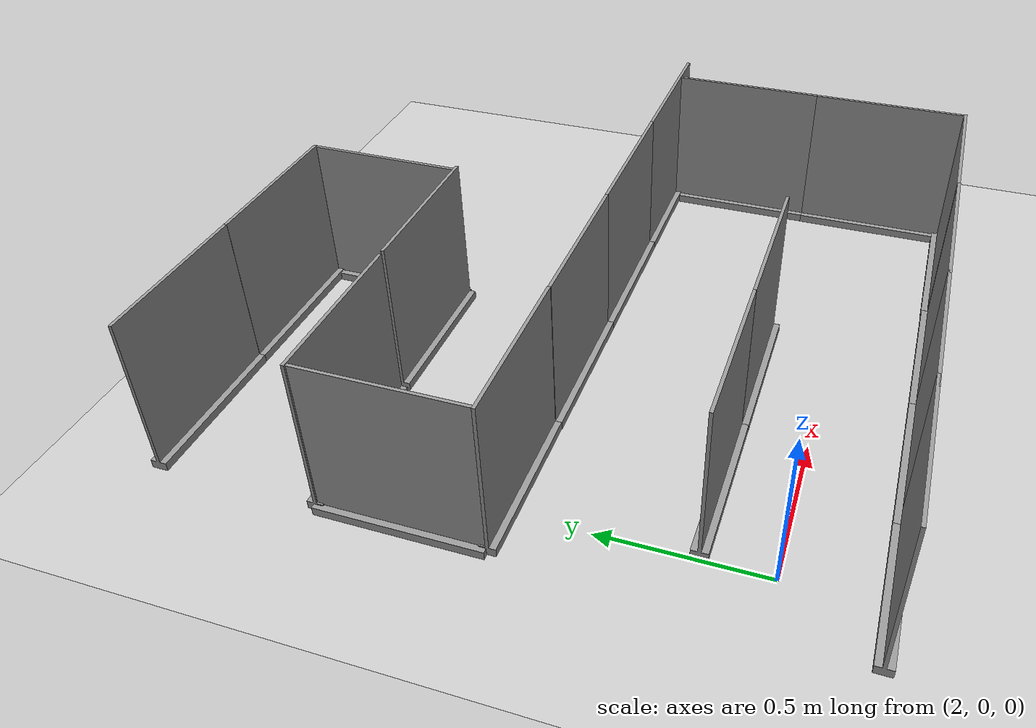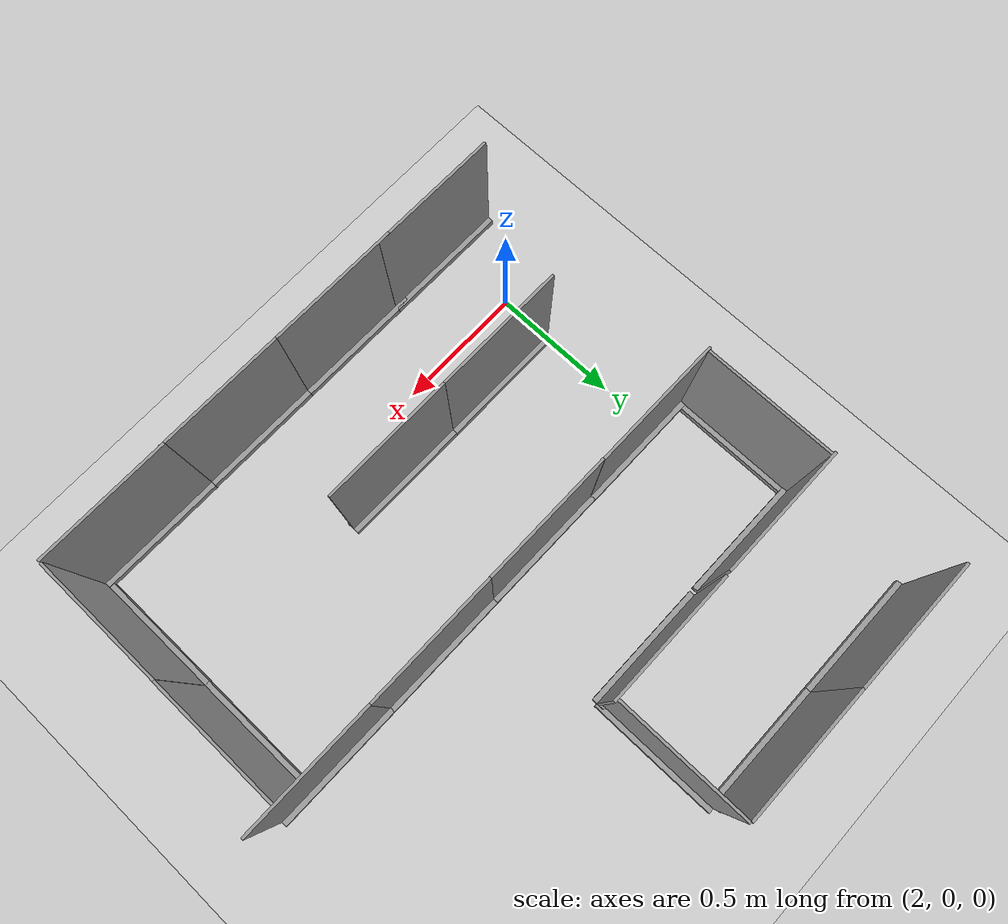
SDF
<sdf version="1.7">
 <world name="default">
  <model name="ground_plane">
   <static>1</static>
   <link name="link">
    <collision name="collision">
     <geometry><plane><normal>0 0 1</normal><size>100 100</size></plane></geometry>
     <surface>
      <contact><collide_bitmask>65535</collide_bitmask></contact>
      <friction><ode><mu>100</mu><mu2>50</mu2></ode></friction>
     </surface>
    </collision>
    <visual name="visual">
     <cast_shadows>0</cast_shadows>
     <geometry><plane><normal>0 0 1</normal><size>100 100</size></plane></geometry>
     <material>
      <script><uri>file://media/materials/scripts/gazebo.material</uri><name>Gazebo/Grey</name></script>
     </material>
    </visual>
   </link>
  </model>
  <model name="Labyrinth_clone_0_clone_2">
   <link name="link_0">
    <inertial>
     <mass>1</mass>
     <inertia>
      <ixx>0.166667</ixx>
      <ixy>0</ixy>
      <ixz>0</ixz>
      <iyy>0.166667</iyy>
      <iyz>0</iyz>
      <izz>0.166667</izz>
     </inertia>
    </inertial>
    <visual name="visual">
     <geometry>
      <mesh><uri>/home/michael/turtlebot_ws/src/worlds/Labyrinth.dae</uri><scale>1 1 1</scale></mesh>
     </geometry>
     <material>
      <lighting>1</lighting>
      <script><uri>file://media/materials/scripts/gazebo.material</uri><name>Gazebo/Grey</name></script>
      <shader type="pixel"/>
     </material>
    </visual>
    <collision name="collision">
     <geometry>
      <mesh><uri>/home/michael/turtlebot_ws/src/worlds/Labyrinth.dae</uri><scale>1 1 1</scale></mesh>
     </geometry>
     <surface>
      <friction>
       <ode><mu>1</mu><mu2>1</mu2><fdir1>0 0 0</fdir1><slip1>0</slip1><slip2>0</slip2></ode>
       <torsional>
        <coefficient>1</coefficient>
        <patch_radius>0</patch_radius>
        <surface_radius>0</surface_radius>
        <use_patch_radius>1</use_patch_radius>
        <ode><slip>0</slip></ode>
       </torsional>
      </friction>
      <bounce><restitution_coefficient>0</restitution_coefficient><threshold>1e+06</threshold></bounce>
      <contact>
       <collide_without_contact>0</collide_without_contact>
       <collide_without_contact_bitmask>1</collide_without_contact_bitmask>
       <collide_bitmask>1</collide_bitmask>
       <ode>
        <soft_cfm>0</soft_cfm>
        <soft_erp>0.2</soft_erp>
        <kp>1e+13</kp>
        <kd>1</kd>
        <max_vel>0.01</max_vel>
        <min_depth>0</min_depth>
       </ode>
       <bullet>
        <split_impulse>1</split_impulse>
        <split_impulse_penetration_threshold>-0.01</split_impulse_penetration_threshold>
        <soft_cfm>0</soft_cfm>
        <soft_erp>0.2</soft_erp>
        <kp>1e+13</kp>
        <kd>1</kd>
       </bullet>
      </contact>
     </surface>
    </collision>
   </link>
   <static>1</static>
   <pose>1.50586 -0.547796 -0.348859 0 -0 1.56533</pose>
  </model>
  <model name="Labyrinth_clone_0_clone_3">
   <link name="link_0">
    <inertial>
     <mass>1</mass>
     <inertia>
      <ixx>0.166667</ixx>
      <ixy>0</ixy>
      <ixz>0</ixz>
      <iyy>0.166667</iyy>
      <iyz>0</iyz>
      <izz>0.166667</izz>
     </inertia>
    </inertial>
    <visual name="visual">
     <geometry>
      <mesh><uri>/home/michael/turtlebot_ws/src/worlds/Labyrinth.dae</uri><scale>1 1 1</scale></mesh>
     </geometry>
     <material>
      <lighting>1</lighting>
      <script><uri>file://media/materials/scripts/gazebo.material</uri><name>Gazebo/Grey</name></script>
      <shader type="pixel"/>
     </material>
    </visual>
    <collision name="collision">
     <geometry>
      <mesh><uri>/home/michael/turtlebot_ws/src/worlds/Labyrinth.dae</uri><scale>1 1 1</scale></mesh>
     </geometry>
     <surface>
      <friction>
       <ode><mu>1</mu><mu2>1</mu2><fdir1>0 0 0</fdir1><slip1>0</slip1><slip2>0</slip2></ode>
       <torsional>
        <coefficient>1</coefficient>
        <patch_radius>0</patch_radius>
        <surface_radius>0</surface_radius>
        <use_patch_radius>1</use_patch_radius>
        <ode><slip>0</slip></ode>
       </torsional>
      </friction>
      <bounce><restitution_coefficient>0</restitution_coefficient><threshold>1e+06</threshold></bounce>
      <contact>
       <collide_without_contact>0</collide_without_contact>
       <collide_without_contact_bitmask>1</collide_without_contact_bitmask>
       <collide_bitmask>1</collide_bitmask>
       <ode>
        <soft_cfm>0</soft_cfm>
        <soft_erp>0.2</soft_erp>
        <kp>1e+13</kp>
        <kd>1</kd>
        <max_vel>0.01</max_vel>
        <min_depth>0</min_depth>
       </ode>
       <bullet>
        <split_impulse>1</split_impulse>
        <split_impulse_penetration_threshold>-0.01</split_impulse_penetration_threshold>
        <soft_cfm>0</soft_cfm>
        <soft_erp>0.2</soft_erp>
        <kp>1e+13</kp>
        <kd>1</kd>
       </bullet>
      </contact>
     </surface>
    </collision>
   </link>
   <static>1</static>
   <pose>1.9586 -0.550609 -0.348859 0 -0 1.56533</pose>
  </model>
  <model name="Labyrinth_clone_0_clone_4">
   <link name="link_0">
    <inertial>
     <mass>1</mass>
     <inertia>
      <ixx>0.166667</ixx>
      <ixy>0</ixy>
      <ixz>0</ixz>
      <iyy>0.166667</iyy>
      <iyz>0</iyz>
      <izz>0.166667</izz>
     </inertia>
    </inertial>
    <visual name="visual">
     <geometry>
      <mesh><uri>/home/michael/turtlebot_ws/src/worlds/Labyrinth.dae</uri><scale>1 1 1</scale></mesh>
     </geometry>
     <material>
      <lighting>1</lighting>
      <script><uri>file://media/materials/scripts/gazebo.material</uri><name>Gazebo/Grey</name></script>
      <shader type="pixel"/>
     </material>
    </visual>
    <collision name="collision">
     <geometry>
      <mesh><uri>/home/michael/turtlebot_ws/src/worlds/Labyrinth.dae</uri><scale>1 1 1</scale></mesh>
     </geometry>
     <surface>
      <friction>
       <ode><mu>1</mu><mu2>1</mu2><fdir1>0 0 0</fdir1><slip1>0</slip1><slip2>0</slip2></ode>
       <torsional>
        <coefficient>1</coefficient>
        <patch_radius>0</patch_radius>
        <surface_radius>0</surface_radius>
        <use_patch_radius>1</use_patch_radius>
        <ode><slip>0</slip></ode>
       </torsional>
      </friction>
      <bounce><restitution_coefficient>0</restitution_coefficient><threshold>1e+06</threshold></bounce>
      <contact>
       <collide_without_contact>0</collide_without_contact>
       <collide_without_contact_bitmask>1</collide_without_contact_bitmask>
       <collide_bitmask>1</collide_bitmask>
       <ode>
        <soft_cfm>0</soft_cfm>
        <soft_erp>0.2</soft_erp>
        <kp>1e+13</kp>
        <kd>1</kd>
        <max_vel>0.01</max_vel>
        <min_depth>0</min_depth>
       </ode>
       <bullet>
        <split_impulse>1</split_impulse>
        <split_impulse_penetration_threshold>-0.01</split_impulse_penetration_threshold>
        <soft_cfm>0</soft_cfm>
        <soft_erp>0.2</soft_erp>
        <kp>1e+13</kp>
        <kd>1</kd>
       </bullet>
      </contact>
     </surface>
    </collision>
   </link>
   <static>1</static>
   <pose>2.44971 -0.553316 -0.348859 0 -0 1.56533</pose>
  </model>
  <model name="Labyrinth_clone_0_clone_5">
   <link name="link_0">
    <inertial>
     <mass>1</mass>
     <inertia>
      <ixx>0.166667</ixx>
      <ixy>0</ixy>
      <ixz>0</ixz>
      <iyy>0.166667</iyy>
      <iyz>0</iyz>
      <izz>0.166667</izz>
     </inertia>
    </inertial>
    <visual name="visual">
     <geometry>
      <mesh><uri>/home/michael/turtlebot_ws/src/worlds/Labyrinth.dae</uri><scale>1 1 1</scale></mesh>
     </geometry>
     <material>
      <lighting>1</lighting>
      <script><uri>file://media/materials/scripts/gazebo.material</uri><name>Gazebo/Grey</name></script>
      <shader type="pixel"/>
     </material>
    </visual>
    <collision name="collision">
     <geometry>
      <mesh><uri>/home/michael/turtlebot_ws/src/worlds/Labyrinth.dae</uri><scale>1 1 1</scale></mesh>
     </geometry>
     <surface>
      <friction>
       <ode><mu>1</mu><mu2>1</mu2><fdir1>0 0 0</fdir1><slip1>0</slip1><slip2>0</slip2></ode>
       <torsional>
        <coefficient>1</coefficient>
        <patch_radius>0</patch_radius>
        <surface_radius>0</surface_radius>
        <use_patch_radius>1</use_patch_radius>
        <ode><slip>0</slip></ode>
       </torsional>
      </friction>
      <bounce><restitution_coefficient>0</restitution_coefficient><threshold>1e+06</threshold></bounce>
      <contact>
       <collide_without_contact>0</collide_without_contact>
       <collide_without_contact_bitmask>1</collide_without_contact_bitmask>
       <collide_bitmask>1</collide_bitmask>
       <ode>
        <soft_cfm>0</soft_cfm>
        <soft_erp>0.2</soft_erp>
        <kp>1e+13</kp>
        <kd>1</kd>
        <max_vel>0.01</max_vel>
        <min_depth>0</min_depth>
       </ode>
       <bullet>
        <split_impulse>1</split_impulse>
        <split_impulse_penetration_threshold>-0.01</split_impulse_penetration_threshold>
        <soft_cfm>0</soft_cfm>
        <soft_erp>0.2</soft_erp>
        <kp>1e+13</kp>
        <kd>1</kd>
       </bullet>
      </contact>
     </surface>
    </collision>
   </link>
   <static>1</static>
   <pose>2.93401 -0.554741 -0.348859 0 -0 1.56533</pose>
  </model>
  <model name="Labyrinth_clone_clone">
   <link name="link_0">
    <inertial>
     <mass>1</mass>
     <inertia>
      <ixx>0.166667</ixx>
      <ixy>0</ixy>
      <ixz>0</ixz>
      <iyy>0.166667</iyy>
      <iyz>0</iyz>
      <izz>0.166667</izz>
     </inertia>
    </inertial>
    <visual name="visual">
     <geometry>
      <mesh><uri>/home/michael/turtlebot_ws/src/worlds/Labyrinth.dae</uri><scale>1 1 1</scale></mesh>
     </geometry>
     <material>
      <lighting>1</lighting>
      <script><uri>file://media/materials/scripts/gazebo.material</uri><name>Gazebo/Grey</name></script>
      <shader type="pixel"/>
     </material>
    </visual>
    <collision name="collision">
     <geometry>
      <mesh><uri>/home/michael/turtlebot_ws/src/worlds/Labyrinth.dae</uri><scale>1 1 1</scale></mesh>
     </geometry>
     <surface>
      <friction>
       <ode><mu>1</mu><mu2>1</mu2><fdir1>0 0 0</fdir1><slip1>0</slip1><slip2>0</slip2></ode>
       <torsional>
        <coefficient>1</coefficient>
        <patch_radius>0</patch_radius>
        <surface_radius>0</surface_radius>
        <use_patch_radius>1</use_patch_radius>
        <ode><slip>0</slip></ode>
       </torsional>
      </friction>
      <bounce><restitution_coefficient>0</restitution_coefficient><threshold>1e+06</threshold></bounce>
      <contact>
       <collide_without_contact>0</collide_without_contact>
       <collide_without_contact_bitmask>1</collide_without_contact_bitmask>
       <collide_bitmask>1</collide_bitmask>
       <ode>
        <soft_cfm>0</soft_cfm>
        <soft_erp>0.2</soft_erp>
        <kp>1e+13</kp>
        <kd>1</kd>
        <max_vel>0.01</max_vel>
        <min_depth>0</min_depth>
       </ode>
       <bullet>
        <split_impulse>1</split_impulse>
        <split_impulse_penetration_threshold>-0.01</split_impulse_penetration_threshold>
        <soft_cfm>0</soft_cfm>
        <soft_erp>0.2</soft_erp>
        <kp>1e+13</kp>
        <kd>1</kd>
       </bullet>
      </contact>
     </surface>
    </collision>
   </link>
   <static>1</static>
   <pose>3.46218 0.510602 -0.352876 0 -0 0</pose>
  </model>
  <model name="Labyrinth_clone_clone_0">
   <link name="link_0">
    <inertial>
     <mass>1</mass>
     <inertia>
      <ixx>0.166667</ixx>
      <ixy>0</ixy>
      <ixz>0</ixz>
      <iyy>0.166667</iyy>
      <iyz>0</iyz>
      <izz>0.166667</izz>
     </inertia>
    </inertial>
    <visual name="visual">
     <geometry>
      <mesh><uri>/home/michael/turtlebot_ws/src/worlds/Labyrinth.dae</uri><scale>1 1 1</scale></mesh>
     </geometry>
     <material>
      <lighting>1</lighting>
      <script><uri>file://media/materials/scripts/gazebo.material</uri><name>Gazebo/Grey</name></script>
      <shader type="pixel"/>
     </material>
    </visual>
    <collision name="collision">
     <geometry>
      <mesh><uri>/home/michael/turtlebot_ws/src/worlds/Labyrinth.dae</uri><scale>1 1 1</scale></mesh>
     </geometry>
     <surface>
      <friction>
       <ode><mu>1</mu><mu2>1</mu2><fdir1>0 0 0</fdir1><slip1>0</slip1><slip2>0</slip2></ode>
       <torsional>
        <coefficient>1</coefficient>
        <patch_radius>0</patch_radius>
        <surface_radius>0</surface_radius>
        <use_patch_radius>1</use_patch_radius>
        <ode><slip>0</slip></ode>
       </torsional>
      </friction>
      <bounce><restitution_coefficient>0</restitution_coefficient><threshold>1e+06</threshold></bounce>
      <contact>
       <collide_without_contact>0</collide_without_contact>
       <collide_without_contact_bitmask>1</collide_without_contact_bitmask>
       <collide_bitmask>1</collide_bitmask>
       <ode>
        <soft_cfm>0</soft_cfm>
        <soft_erp>0.2</soft_erp>
        <kp>1e+13</kp>
        <kd>1</kd>
        <max_vel>0.01</max_vel>
        <min_depth>0</min_depth>
       </ode>
       <bullet>
        <split_impulse>1</split_impulse>
        <split_impulse_penetration_threshold>-0.01</split_impulse_penetration_threshold>
        <soft_cfm>0</soft_cfm>
        <soft_erp>0.2</soft_erp>
        <kp>1e+13</kp>
        <kd>1</kd>
       </bullet>
      </contact>
     </surface>
    </collision>
   </link>
   <static>1</static>
   <pose>3.46315 1.01229 -0.352876 0 -0 0</pose>
  </model>
  <model name="Labyrinth_clone_0_clone_5_clone">
   <link name="link_0">
    <inertial>
     <mass>1</mass>
     <inertia>
      <ixx>0.166667</ixx>
      <ixy>0</ixy>
      <ixz>0</ixz>
      <iyy>0.166667</iyy>
      <iyz>0</iyz>
      <izz>0.166667</izz>
     </inertia>
    </inertial>
    <visual name="visual">
     <geometry>
      <mesh><uri>/home/michael/turtlebot_ws/src/worlds/Labyrinth.dae</uri><scale>1 1 1</scale></mesh>
     </geometry>
     <material>
      <lighting>1</lighting>
      <script><uri>file://media/materials/scripts/gazebo.material</uri><name>Gazebo/Grey</name></script>
      <shader type="pixel"/>
     </material>
    </visual>
    <collision name="collision">
     <geometry>
      <mesh><uri>/home/michael/turtlebot_ws/src/worlds/Labyrinth.dae</uri><scale>1 1 1</scale></mesh>
     </geometry>
     <surface>
      <friction>
       <ode><mu>1</mu><mu2>1</mu2><fdir1>0 0 0</fdir1><slip1>0</slip1><slip2>0</slip2></ode>
       <torsional>
        <coefficient>1</coefficient>
        <patch_radius>0</patch_radius>
        <surface_radius>0</surface_radius>
        <use_patch_radius>1</use_patch_radius>
        <ode><slip>0</slip></ode>
       </torsional>
      </friction>
      <bounce><restitution_coefficient>0</restitution_coefficient><threshold>1e+06</threshold></bounce>
      <contact>
       <collide_without_contact>0</collide_without_contact>
       <collide_without_contact_bitmask>1</collide_without_contact_bitmask>
       <collide_bitmask>1</collide_bitmask>
       <ode>
        <soft_cfm>0</soft_cfm>
        <soft_erp>0.2</soft_erp>
        <kp>1e+13</kp>
        <kd>1</kd>
        <max_vel>0.01</max_vel>
        <min_depth>0</min_depth>
       </ode>
       <bullet>
        <split_impulse>1</split_impulse>
        <split_impulse_penetration_threshold>-0.01</split_impulse_penetration_threshold>
        <soft_cfm>0</soft_cfm>
        <soft_erp>0.2</soft_erp>
        <kp>1e+13</kp>
        <kd>1</kd>
       </bullet>
      </contact>
     </surface>
    </collision>
   </link>
   <static>1</static>
   <pose>2.20642 -0.0627 -0.348859 0 -0 1.56533</pose>
  </model>
  <model name="Labyrinth_clone_0_clone_5_clone_0">
   <link name="link_0">
    <inertial>
     <mass>1</mass>
     <inertia>
      <ixx>0.166667</ixx>
      <ixy>0</ixy>
      <ixz>0</ixz>
      <iyy>0.166667</iyy>
      <iyz>0</iyz>
      <izz>0.166667</izz>
     </inertia>
    </inertial>
    <visual name="visual">
     <geometry>
      <mesh><uri>/home/michael/turtlebot_ws/src/worlds/Labyrinth.dae</uri><scale>1 1 1</scale></mesh>
     </geometry>
     <material>
      <lighting>1</lighting>
      <script><uri>file://media/materials/scripts/gazebo.material</uri><name>Gazebo/Grey</name></script>
      <shader type="pixel"/>
     </material>
    </visual>
    <collision name="collision">
     <geometry>
      <mesh><uri>/home/michael/turtlebot_ws/src/worlds/Labyrinth.dae</uri><scale>1 1 1</scale></mesh>
     </geometry>
     <surface>
      <friction>
       <ode><mu>1</mu><mu2>1</mu2><fdir1>0 0 0</fdir1><slip1>0</slip1><slip2>0</slip2></ode>
       <torsional>
        <coefficient>1</coefficient>
        <patch_radius>0</patch_radius>
        <surface_radius>0</surface_radius>
        <use_patch_radius>1</use_patch_radius>
        <ode><slip>0</slip></ode>
       </torsional>
      </friction>
      <bounce><restitution_coefficient>0</restitution_coefficient><threshold>1e+06</threshold></bounce>
      <contact>
       <collide_without_contact>0</collide_without_contact>
       <collide_without_contact_bitmask>1</collide_without_contact_bitmask>
       <collide_bitmask>1</collide_bitmask>
       <ode>
        <soft_cfm>0</soft_cfm>
        <soft_erp>0.2</soft_erp>
        <kp>1e+13</kp>
        <kd>1</kd>
        <max_vel>0.01</max_vel>
        <min_depth>0</min_depth>
       </ode>
       <bullet>
        <split_impulse>1</split_impulse>
        <split_impulse_penetration_threshold>-0.01</split_impulse_penetration_threshold>
        <soft_cfm>0</soft_cfm>
        <soft_erp>0.2</soft_erp>
        <kp>1e+13</kp>
        <kd>1</kd>
       </bullet>
      </contact>
     </surface>
    </collision>
   </link>
   <static>1</static>
   <pose>1.70557 -0.059722 -0.348859 0 -0 1.56533</pose>
  </model>
  <model name="Labyrinth_clone_0_clone_5_clone_6">
   <link name="link_0">
    <inertial>
     <mass>1</mass>
     <inertia>
      <ixx>0.166667</ixx>
      <ixy>0</ixy>
      <ixz>0</ixz>
      <iyy>0.166667</iyy>
      <iyz>0</iyz>
      <izz>0.166667</izz>
     </inertia>
    </inertial>
    <visual name="visual">
     <geometry>
      <mesh><uri>/home/michael/turtlebot_ws/src/worlds/Labyrinth.dae</uri><scale>1 1 1</scale></mesh>
     </geometry>
     <material>
      <lighting>1</lighting>
      <script><uri>file://media/materials/scripts/gazebo.material</uri><name>Gazebo/Grey</name></script>
      <shader type="pixel"/>
     </material>
    </visual>
    <collision name="collision">
     <geometry>
      <mesh><uri>/home/michael/turtlebot_ws/src/worlds/Labyrinth.dae</uri><scale>1 1 1</scale></mesh>
     </geometry>
     <surface>
      <friction>
       <ode><mu>1</mu><mu2>1</mu2><fdir1>0 0 0</fdir1><slip1>0</slip1><slip2>0</slip2></ode>
       <torsional>
        <coefficient>1</coefficient>
        <patch_radius>0</patch_radius>
        <surface_radius>0</surface_radius>
        <use_patch_radius>1</use_patch_radius>
        <ode><slip>0</slip></ode>
       </torsional>
      </friction>
      <bounce><restitution_coefficient>0</restitution_coefficient><threshold>1e+06</threshold></bounce>
      <contact>
       <collide_without_contact>0</collide_without_contact>
       <collide_without_contact_bitmask>1</collide_without_contact_bitmask>
       <collide_bitmask>1</collide_bitmask>
       <ode>
        <soft_cfm>0</soft_cfm>
        <soft_erp>0.2</soft_erp>
        <kp>1e+13</kp>
        <kd>1</kd>
        <max_vel>0.01</max_vel>
        <min_depth>0</min_depth>
       </ode>
       <bullet>
        <split_impulse>1</split_impulse>
        <split_impulse_penetration_threshold>-0.01</split_impulse_penetration_threshold>
        <soft_cfm>0</soft_cfm>
        <soft_erp>0.2</soft_erp>
        <kp>1e+13</kp>
        <kd>1</kd>
       </bullet>
      </contact>
     </surface>
    </collision>
   </link>
   <static>1</static>
   <pose>3.05533 0.457917 -0.348859 0 -0 1.56533</pose>
  </model>
  <model name="Labyrinth_clone_0_clone_5_clone_7">
   <link name="link_0">
    <inertial>
     <mass>1</mass>
     <inertia>
      <ixx>0.166667</ixx>
      <ixy>0</ixy>
      <ixz>0</ixz>
      <iyy>0.166667</iyy>
      <iyz>0</iyz>
      <izz>0.166667</izz>
     </inertia>
    </inertial>
    <visual name="visual">
     <geometry>
      <mesh><uri>/home/michael/turtlebot_ws/src/worlds/Labyrinth.dae</uri><scale>1 1 1</scale></mesh>
     </geometry>
     <material>
      <lighting>1</lighting>
      <script><uri>file://media/materials/scripts/gazebo.material</uri><name>Gazebo/Grey</name></script>
      <shader type="pixel"/>
     </material>
    </visual>
    <collision name="collision">
     <geometry>
      <mesh><uri>/home/michael/turtlebot_ws/src/worlds/Labyrinth.dae</uri><scale>1 1 1</scale></mesh>
     </geometry>
     <surface>
      <friction>
       <ode><mu>1</mu><mu2>1</mu2><fdir1>0 0 0</fdir1><slip1>0</slip1><slip2>0</slip2></ode>
       <torsional>
        <coefficient>1</coefficient>
        <patch_radius>0</patch_radius>
        <surface_radius>0</surface_radius>
        <use_patch_radius>1</use_patch_radius>
        <ode><slip>0</slip></ode>
       </torsional>
      </friction>
      <bounce><restitution_coefficient>0</restitution_coefficient><threshold>1e+06</threshold></bounce>
      <contact>
       <collide_without_contact>0</collide_without_contact>
       <collide_without_contact_bitmask>1</collide_without_contact_bitmask>
       <collide_bitmask>1</collide_bitmask>
       <ode>
        <soft_cfm>0</soft_cfm>
        <soft_erp>0.2</soft_erp>
        <kp>1e+13</kp>
        <kd>1</kd>
        <max_vel>0.01</max_vel>
        <min_depth>0</min_depth>
       </ode>
       <bullet>
        <split_impulse>1</split_impulse>
        <split_impulse_penetration_threshold>-0.01</split_impulse_penetration_threshold>
        <soft_cfm>0</soft_cfm>
        <soft_erp>0.2</soft_erp>
        <kp>1e+13</kp>
        <kd>1</kd>
       </bullet>
      </contact>
     </surface>
    </collision>
   </link>
   <static>1</static>
   <pose>2.55404 0.460753 -0.348859 0 -0 1.56533</pose>
  </model>
  <model name="Labyrinth_clone_0_clone_5_clone_8">
   <link name="link_0">
    <inertial>
     <mass>1</mass>
     <inertia>
      <ixx>0.166667</ixx>
      <ixy>0</ixy>
      <ixz>0</ixz>
      <iyy>0.166667</iyy>
      <iyz>0</iyz>
      <izz>0.166667</izz>
     </inertia>
    </inertial>
    <visual name="visual">
     <geometry>
      <mesh><uri>/home/michael/turtlebot_ws/src/worlds/Labyrinth.dae</uri><scale>1 1 1</scale></mesh>
     </geometry>
     <material>
      <lighting>1</lighting>
      <script><uri>file://media/materials/scripts/gazebo.material</uri><name>Gazebo/Grey</name></script>
      <shader type="pixel"/>
     </material>
    </visual>
    <collision name="collision">
     <geometry>
      <mesh><uri>/home/michael/turtlebot_ws/src/worlds/Labyrinth.dae</uri><scale>1 1 1</scale></mesh>
     </geometry>
     <surface>
      <friction>
       <ode><mu>1</mu><mu2>1</mu2><fdir1>0 0 0</fdir1><slip1>0</slip1><slip2>0</slip2></ode>
       <torsional>
        <coefficient>1</coefficient>
        <patch_radius>0</patch_radius>
        <surface_radius>0</surface_radius>
        <use_patch_radius>1</use_patch_radius>
        <ode><slip>0</slip></ode>
       </torsional>
      </friction>
      <bounce><restitution_coefficient>0</restitution_coefficient><threshold>1e+06</threshold></bounce>
      <contact>
       <collide_without_contact>0</collide_without_contact>
       <collide_without_contact_bitmask>1</collide_without_contact_bitmask>
       <collide_bitmask>1</collide_bitmask>
       <ode>
        <soft_cfm>0</soft_cfm>
        <soft_erp>0.2</soft_erp>
        <kp>1e+13</kp>
        <kd>1</kd>
        <max_vel>0.01</max_vel>
        <min_depth>0</min_depth>
       </ode>
       <bullet>
        <split_impulse>1</split_impulse>
        <split_impulse_penetration_threshold>-0.01</split_impulse_penetration_threshold>
        <soft_cfm>0</soft_cfm>
        <soft_erp>0.2</soft_erp>
        <kp>1e+13</kp>
        <kd>1</kd>
       </bullet>
      </contact>
     </surface>
    </collision>
   </link>
   <static>1</static>
   <pose>2.05102 0.463323 -0.348859 0 -0 1.56533</pose>
  </model>
  <model name="Labyrinth_clone_0_clone_5_clone_9">
   <link name="link_0">
    <inertial>
     <mass>1</mass>
     <inertia>
      <ixx>0.166667</ixx>
      <ixy>0</ixy>
      <ixz>0</ixz>
      <iyy>0.166667</iyy>
      <iyz>0</iyz>
      <izz>0.166667</izz>
     </inertia>
    </inertial>
    <visual name="visual">
     <geometry>
      <mesh><uri>/home/michael/turtlebot_ws/src/worlds/Labyrinth.dae</uri><scale>1 1 1</scale></mesh>
     </geometry>
     <material>
      <lighting>1</lighting>
      <script><uri>file://media/materials/scripts/gazebo.material</uri><name>Gazebo/Grey</name></script>
      <shader type="pixel"/>
     </material>
    </visual>
    <collision name="collision">
     <geometry>
      <mesh><uri>/home/michael/turtlebot_ws/src/worlds/Labyrinth.dae</uri><scale>1 1 1</scale></mesh>
     </geometry>
     <surface>
      <friction>
       <ode><mu>1</mu><mu2>1</mu2><fdir1>0 0 0</fdir1><slip1>0</slip1><slip2>0</slip2></ode>
       <torsional>
        <coefficient>1</coefficient>
        <patch_radius>0</patch_radius>
        <surface_radius>0</surface_radius>
        <use_patch_radius>1</use_patch_radius>
        <ode><slip>0</slip></ode>
       </torsional>
      </friction>
      <bounce><restitution_coefficient>0</restitution_coefficient><threshold>1e+06</threshold></bounce>
      <contact>
       <collide_without_contact>0</collide_without_contact>
       <collide_without_contact_bitmask>1</collide_without_contact_bitmask>
       <collide_bitmask>1</collide_bitmask>
       <ode>
        <soft_cfm>0</soft_cfm>
        <soft_erp>0.2</soft_erp>
        <kp>1e+13</kp>
        <kd>1</kd>
        <max_vel>0.01</max_vel>
        <min_depth>0</min_depth>
       </ode>
       <bullet>
        <split_impulse>1</split_impulse>
        <split_impulse_penetration_threshold>-0.01</split_impulse_penetration_threshold>
        <soft_cfm>0</soft_cfm>
        <soft_erp>0.2</soft_erp>
        <kp>1e+13</kp>
        <kd>1</kd>
       </bullet>
      </contact>
     </surface>
    </collision>
   </link>
   <static>1</static>
   <pose>1.55152 0.467419 -0.348859 0 -0 1.56533</pose>
  </model>
  <model name="Labyrinth_clone_clone_0_clone">
   <link name="link_0">
    <inertial>
     <mass>1</mass>
     <inertia>
      <ixx>0.166667</ixx>
      <ixy>0</ixy>
      <ixz>0</ixz>
      <iyy>0.166667</iyy>
      <iyz>0</iyz>
      <izz>0.166667</izz>
     </inertia>
    </inertial>
    <visual name="visual">
     <geometry>
      <mesh><uri>/home/michael/turtlebot_ws/src/worlds/Labyrinth.dae</uri><scale>1 1 1</scale></mesh>
     </geometry>
     <material>
      <lighting>1</lighting>
      <script><uri>file://media/materials/scripts/gazebo.material</uri><name>Gazebo/Grey</name></script>
      <shader type="pixel"/>
     </material>
    </visual>
    <collision name="collision">
     <geometry>
      <mesh><uri>/home/michael/turtlebot_ws/src/worlds/Labyrinth.dae</uri><scale>1 1 1</scale></mesh>
     </geometry>
     <surface>
      <friction>
       <ode><mu>1</mu><mu2>1</mu2><fdir1>0 0 0</fdir1><slip1>0</slip1><slip2>0</slip2></ode>
       <torsional>
        <coefficient>1</coefficient>
        <patch_radius>0</patch_radius>
        <surface_radius>0</surface_radius>
        <use_patch_radius>1</use_patch_radius>
        <ode><slip>0</slip></ode>
       </torsional>
      </friction>
      <bounce><restitution_coefficient>0</restitution_coefficient><threshold>1e+06</threshold></bounce>
      <contact>
       <collide_without_contact>0</collide_without_contact>
       <collide_without_contact_bitmask>1</collide_without_contact_bitmask>
       <collide_bitmask>1</collide_bitmask>
       <ode>
        <soft_cfm>0</soft_cfm>
        <soft_erp>0.2</soft_erp>
        <kp>1e+13</kp>
        <kd>1</kd>
        <max_vel>0.01</max_vel>
        <min_depth>0</min_depth>
       </ode>
       <bullet>
        <split_impulse>1</split_impulse>
        <split_impulse_penetration_threshold>-0.01</split_impulse_penetration_threshold>
        <soft_cfm>0</soft_cfm>
        <soft_erp>0.2</soft_erp>
        <kp>1e+13</kp>
        <kd>1</kd>
       </bullet>
      </contact>
     </surface>
    </collision>
   </link>
   <static>1</static>
   <pose>2.58471 2.02195 -0.352876 0 -0 0</pose>
  </model>
  <model name="Labyrinth_clone_clone_0_clone_2">
   <link name="link_0">
    <inertial>
     <mass>1</mass>
     <inertia>
      <ixx>0.166667</ixx>
      <ixy>0</ixy>
      <ixz>0</ixz>
      <iyy>0.166667</iyy>
      <iyz>0</iyz>
      <izz>0.166667</izz>
     </inertia>
    </inertial>
    <visual name="visual">
     <geometry>
      <mesh><uri>/home/michael/turtlebot_ws/src/worlds/Labyrinth.dae</uri><scale>1 1 1</scale></mesh>
     </geometry>
     <material>
      <lighting>1</lighting>
      <script><uri>file://media/materials/scripts/gazebo.material</uri><name>Gazebo/Grey</name></script>
      <shader type="pixel"/>
     </material>
    </visual>
    <collision name="collision">
     <geometry>
      <mesh><uri>/home/michael/turtlebot_ws/src/worlds/Labyrinth.dae</uri><scale>1 1 1</scale></mesh>
     </geometry>
     <surface>
      <friction>
       <ode><mu>1</mu><mu2>1</mu2><fdir1>0 0 0</fdir1><slip1>0</slip1><slip2>0</slip2></ode>
       <torsional>
        <coefficient>1</coefficient>
        <patch_radius>0</patch_radius>
        <surface_radius>0</surface_radius>
        <use_patch_radius>1</use_patch_radius>
        <ode><slip>0</slip></ode>
       </torsional>
      </friction>
      <bounce><restitution_coefficient>0</restitution_coefficient><threshold>1e+06</threshold></bounce>
      <contact>
       <collide_without_contact>0</collide_without_contact>
       <collide_without_contact_bitmask>1</collide_without_contact_bitmask>
       <collide_bitmask>1</collide_bitmask>
       <ode>
        <soft_cfm>0</soft_cfm>
        <soft_erp>0.2</soft_erp>
        <kp>1e+13</kp>
        <kd>1</kd>
        <max_vel>0.01</max_vel>
        <min_depth>0</min_depth>
       </ode>
       <bullet>
        <split_impulse>1</split_impulse>
        <split_impulse_penetration_threshold>-0.01</split_impulse_penetration_threshold>
        <soft_cfm>0</soft_cfm>
        <soft_erp>0.2</soft_erp>
        <kp>1e+13</kp>
        <kd>1</kd>
       </bullet>
      </contact>
     </surface>
    </collision>
   </link>
   <static>1</static>
   <pose>1.58681 1.53038 -0.352876 0 -0 0</pose>
  </model>
  <model name="Labyrinth_clone_0_clone_5_clone_10_clone">
   <link name="link_0">
    <inertial>
     <mass>1</mass>
     <inertia>
      <ixx>0.166667</ixx>
      <ixy>0</ixy>
      <ixz>0</ixz>
      <iyy>0.166667</iyy>
      <iyz>0</iyz>
      <izz>0.166667</izz>
     </inertia>
    </inertial>
    <visual name="visual">
     <geometry>
      <mesh><uri>/home/michael/turtlebot_ws/src/worlds/Labyrinth.dae</uri><scale>1 1 1</scale></mesh>
     </geometry>
     <material>
      <lighting>1</lighting>
      <script><uri>file://media/materials/scripts/gazebo.material</uri><name>Gazebo/Grey</name></script>
      <shader type="pixel"/>
     </material>
    </visual>
    <collision name="collision">
     <geometry>
      <mesh><uri>/home/michael/turtlebot_ws/src/worlds/Labyrinth.dae</uri><scale>1 1 1</scale></mesh>
     </geometry>
     <surface>
      <friction>
       <ode><mu>1</mu><mu2>1</mu2><fdir1>0 0 0</fdir1><slip1>0</slip1><slip2>0</slip2></ode>
       <torsional>
        <coefficient>1</coefficient>
        <patch_radius>0</patch_radius>
        <surface_radius>0</surface_radius>
        <use_patch_radius>1</use_patch_radius>
        <ode><slip>0</slip></ode>
       </torsional>
      </friction>
      <bounce><restitution_coefficient>0</restitution_coefficient><threshold>1e+06</threshold></bounce>
      <contact>
       <collide_without_contact>0</collide_without_contact>
       <collide_without_contact_bitmask>1</collide_without_contact_bitmask>
       <collide_bitmask>1</collide_bitmask>
       <ode>
        <soft_cfm>0</soft_cfm>
        <soft_erp>0.2</soft_erp>
        <kp>1e+13</kp>
        <kd>1</kd>
        <max_vel>0.01</max_vel>
        <min_depth>0</min_depth>
       </ode>
       <bullet>
        <split_impulse>1</split_impulse>
        <split_impulse_penetration_threshold>-0.01</split_impulse_penetration_threshold>
        <soft_cfm>0</soft_cfm>
        <soft_erp>0.2</soft_erp>
        <kp>1e+13</kp>
        <kd>1</kd>
       </bullet>
      </contact>
     </surface>
    </collision>
   </link>
   <static>1</static>
   <pose>1.55112 1.46992 -0.348859 0 -0 1.56533</pose>
  </model>
  <model name="Labyrinth_clone_0_clone_5_clone_10_clone_0">
   <link name="link_0">
    <inertial>
     <mass>1</mass>
     <inertia>
      <ixx>0.166667</ixx>
      <ixy>0</ixy>
      <ixz>0</ixz>
      <iyy>0.166667</iyy>
      <iyz>0</iyz>
      <izz>0.166667</izz>
     </inertia>
    </inertial>
    <visual name="visual">
     <geometry>
      <mesh><uri>/home/michael/turtlebot_ws/src/worlds/Labyrinth.dae</uri><scale>1 1 1</scale></mesh>
     </geometry>
     <material>
      <lighting>1</lighting>
      <script><uri>file://media/materials/scripts/gazebo.material</uri><name>Gazebo/Grey</name></script>
      <shader type="pixel"/>
     </material>
    </visual>
    <collision name="collision">
     <geometry>
      <mesh><uri>/home/michael/turtlebot_ws/src/worlds/Labyrinth.dae</uri><scale>1 1 1</scale></mesh>
     </geometry>
     <surface>
      <friction>
       <ode><mu>1</mu><mu2>1</mu2><fdir1>0 0 0</fdir1><slip1>0</slip1><slip2>0</slip2></ode>
       <torsional>
        <coefficient>1</coefficient>
        <patch_radius>0</patch_radius>
        <surface_radius>0</surface_radius>
        <use_patch_radius>1</use_patch_radius>
        <ode><slip>0</slip></ode>
       </torsional>
      </friction>
      <bounce><restitution_coefficient>0</restitution_coefficient><threshold>1e+06</threshold></bounce>
      <contact>
       <collide_without_contact>0</collide_without_contact>
       <collide_without_contact_bitmask>1</collide_without_contact_bitmask>
       <collide_bitmask>1</collide_bitmask>
       <ode>
        <soft_cfm>0</soft_cfm>
        <soft_erp>0.2</soft_erp>
        <kp>1e+13</kp>
        <kd>1</kd>
        <max_vel>0.01</max_vel>
        <min_depth>0</min_depth>
       </ode>
       <bullet>
        <split_impulse>1</split_impulse>
        <split_impulse_penetration_threshold>-0.01</split_impulse_penetration_threshold>
        <soft_cfm>0</soft_cfm>
        <soft_erp>0.2</soft_erp>
        <kp>1e+13</kp>
        <kd>1</kd>
       </bullet>
      </contact>
     </surface>
    </collision>
   </link>
   <static>1</static>
   <pose>2.05303 1.46693 -0.348859 0 -0 1.56533</pose>
  </model>
  <model name="Labyrinth_clone_0_clone_5_clone_10_clone_1">
   <link name="link_0">
    <inertial>
     <mass>1</mass>
     <inertia>
      <ixx>0.166667</ixx>
      <ixy>0</ixy>
      <ixz>0</ixz>
      <iyy>0.166667</iyy>
      <iyz>0</iyz>
      <izz>0.166667</izz>
     </inertia>
    </inertial>
    <visual name="visual">
     <geometry>
      <mesh><uri>/home/michael/turtlebot_ws/src/worlds/Labyrinth.dae</uri><scale>1 1 1</scale></mesh>
     </geometry>
     <material>
      <lighting>1</lighting>
      <script><uri>file://media/materials/scripts/gazebo.material</uri><name>Gazebo/Grey</name></script>
      <shader type="pixel"/>
     </material>
    </visual>
    <collision name="collision">
     <geometry>
      <mesh><uri>/home/michael/turtlebot_ws/src/worlds/Labyrinth.dae</uri><scale>1 1 1</scale></mesh>
     </geometry>
     <surface>
      <friction>
       <ode><mu>1</mu><mu2>1</mu2><fdir1>0 0 0</fdir1><slip1>0</slip1><slip2>0</slip2></ode>
       <torsional>
        <coefficient>1</coefficient>
        <patch_radius>0</patch_radius>
        <surface_radius>0</surface_radius>
        <use_patch_radius>1</use_patch_radius>
        <ode><slip>0</slip></ode>
       </torsional>
      </friction>
      <bounce><restitution_coefficient>0</restitution_coefficient><threshold>1e+06</threshold></bounce>
      <contact>
       <collide_without_contact>0</collide_without_contact>
       <collide_without_contact_bitmask>1</collide_without_contact_bitmask>
       <collide_bitmask>1</collide_bitmask>
       <ode>
        <soft_cfm>0</soft_cfm>
        <soft_erp>0.2</soft_erp>
        <kp>1e+13</kp>
        <kd>1</kd>
        <max_vel>0.01</max_vel>
        <min_depth>0</min_depth>
       </ode>
       <bullet>
        <split_impulse>1</split_impulse>
        <split_impulse_penetration_threshold>-0.01</split_impulse_penetration_threshold>
        <soft_cfm>0</soft_cfm>
        <soft_erp>0.2</soft_erp>
        <kp>1e+13</kp>
        <kd>1</kd>
       </bullet>
      </contact>
     </surface>
    </collision>
   </link>
   <static>1</static>
   <pose>1.55064 0.969842 -0.348859 0 -0 1.56533</pose>
  </model>
  <model name="Labyrinth_clone_0_clone_5_clone_10_clone_2">
   <link name="link_0">
    <inertial>
     <mass>1</mass>
     <inertia>
      <ixx>0.166667</ixx>
      <ixy>0</ixy>
      <ixz>0</ixz>
      <iyy>0.166667</iyy>
      <iyz>0</iyz>
      <izz>0.166667</izz>
     </inertia>
    </inertial>
    <visual name="visual">
     <geometry>
      <mesh><uri>/home/michael/turtlebot_ws/src/worlds/Labyrinth.dae</uri><scale>1 1 1</scale></mesh>
     </geometry>
     <material>
      <lighting>1</lighting>
      <script><uri>file://media/materials/scripts/gazebo.material</uri><name>Gazebo/Grey</name></script>
      <shader type="pixel"/>
     </material>
    </visual>
    <collision name="collision">
     <geometry>
      <mesh><uri>/home/michael/turtlebot_ws/src/worlds/Labyrinth.dae</uri><scale>1 1 1</scale></mesh>
     </geometry>
     <surface>
      <friction>
       <ode><mu>1</mu><mu2>1</mu2><fdir1>0 0 0</fdir1><slip1>0</slip1><slip2>0</slip2></ode>
       <torsional>
        <coefficient>1</coefficient>
        <patch_radius>0</patch_radius>
        <surface_radius>0</surface_radius>
        <use_patch_radius>1</use_patch_radius>
        <ode><slip>0</slip></ode>
       </torsional>
      </friction>
      <bounce><restitution_coefficient>0</restitution_coefficient><threshold>1e+06</threshold></bounce>
      <contact>
       <collide_without_contact>0</collide_without_contact>
       <collide_without_contact_bitmask>1</collide_without_contact_bitmask>
       <collide_bitmask>1</collide_bitmask>
       <ode>
        <soft_cfm>0</soft_cfm>
        <soft_erp>0.2</soft_erp>
        <kp>1e+13</kp>
        <kd>1</kd>
        <max_vel>0.01</max_vel>
        <min_depth>0</min_depth>
       </ode>
       <bullet>
        <split_impulse>1</split_impulse>
        <split_impulse_penetration_threshold>-0.01</split_impulse_penetration_threshold>
        <soft_cfm>0</soft_cfm>
        <soft_erp>0.2</soft_erp>
        <kp>1e+13</kp>
        <kd>1</kd>
       </bullet>
      </contact>
     </surface>
    </collision>
   </link>
   <static>1</static>
   <pose>2.07005 0.968551 -0.348859 0 -0 1.56533</pose>
  </model>
 </world>
</sdf>
